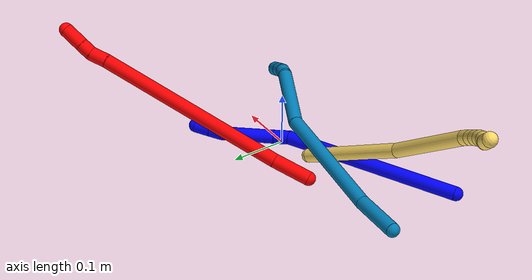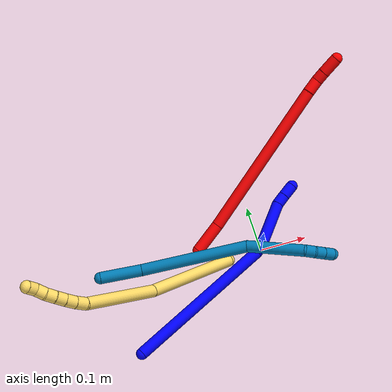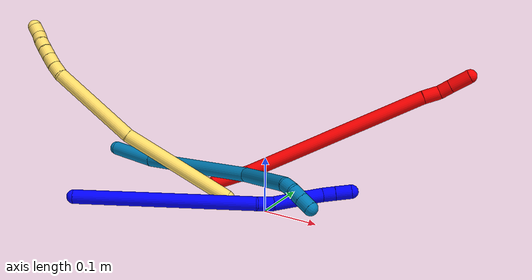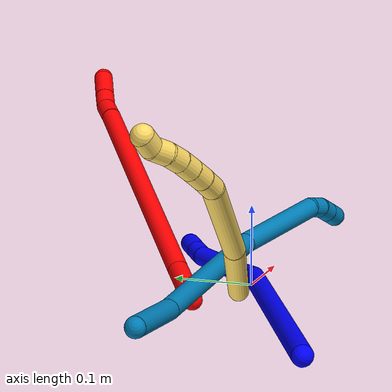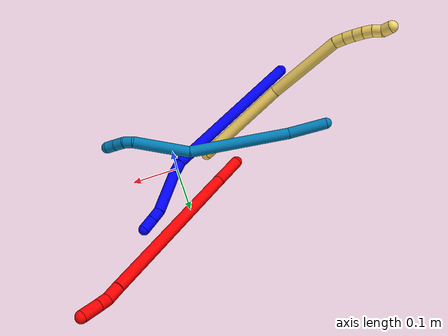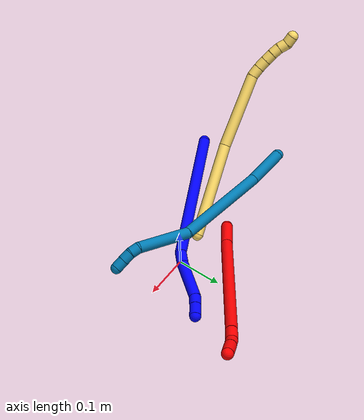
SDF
<sdf version="1.7">
 <world name="default">
  <model name="1">
   <static>0</static>
   <link name="1">
    <collision name="collision-cylinder-e_1_1_4">
     <pose>0.067224 0.115352 0.093211 -0.89116 0.425581 -0.205661</pose>
     <geometry><cylinder><radius>0.0125</radius><length>0.325659</length></cylinder></geometry>
     <surface>
      <friction><ode><mu>1.16</mu><mu2>1.16</mu2><slip1>0</slip1><slip2>0</slip2></ode></friction>
      <contact><ode><kp>1e+06</kp><kd>1</kd><max_vel>0</max_vel><min_depth>0.001</min_depth></ode></contact>
     </surface>
    </collision>
    <visual name="visual-cylinder-e_1_1_4">
     <pose>0.067224 0.115352 0.093211 -0.89116 0.425581 -0.205661</pose>
     <geometry><cylinder><radius>0.0125</radius><length>0.325659</length></cylinder></geometry>
     <material><ambient>0 0 1 1</ambient></material>
    </visual>
    <collision name="collision-cylinder-e_2_4_5">
     <pose>0.141596 0.237093 0.197056 -0.541038 0.522737 -0.148086</pose>
     <geometry><cylinder><radius>0.0125</radius><length>0.028635</length></cylinder></geometry>
     <surface>
      <friction><ode><mu>1.16</mu><mu2>1.16</mu2><slip1>0</slip1><slip2>0</slip2></ode></friction>
      <contact><ode><kp>1e+06</kp><kd>1</kd><max_vel>0</max_vel><min_depth>0.001</min_depth></ode></contact>
     </surface>
    </collision>
    <visual name="visual-cylinder-e_2_4_5">
     <pose>0.141596 0.237093 0.197056 -0.541038 0.522737 -0.148086</pose>
     <geometry><cylinder><radius>0.0125</radius><length>0.028635</length></cylinder></geometry>
     <material><ambient>0 0 1 1</ambient></material>
    </visual>
    <collision name="collision-cylinder-e_3_5_6">
     <pose>0.178696 0.259241 0.239662 -0.457946 0.698814 -0.169427</pose>
     <geometry><cylinder><radius>0.0125</radius><length>0.093116</length></cylinder></geometry>
     <surface>
      <friction><ode><mu>1.16</mu><mu2>1.16</mu2><slip1>0</slip1><slip2>0</slip2></ode></friction>
      <contact><ode><kp>1e+06</kp><kd>1</kd><max_vel>0</max_vel><min_depth>0.001</min_depth></ode></contact>
     </surface>
    </collision>
    <visual name="visual-cylinder-e_3_5_6">
     <pose>0.178696 0.259241 0.239662 -0.457946 0.698814 -0.169427</pose>
     <geometry><cylinder><radius>0.0125</radius><length>0.093116</length></cylinder></geometry>
     <material><ambient>0 0 1 1</ambient></material>
    </visual>
    <collision name="collision-cylinder-e_4_6_7">
     <pose>0.215443 0.281933 0.278492 -0.790871 0.608616 -0.260707</pose>
     <geometry><cylinder><radius>0.0125</radius><length>0.023773</length></cylinder></geometry>
     <surface>
      <friction><ode><mu>1.16</mu><mu2>1.16</mu2><slip1>0</slip1><slip2>0</slip2></ode></friction>
      <contact><ode><kp>1e+06</kp><kd>1</kd><max_vel>0</max_vel><min_depth>0.001</min_depth></ode></contact>
     </surface>
    </collision>
    <visual name="visual-cylinder-e_4_6_7">
     <pose>0.215443 0.281933 0.278492 -0.790871 0.608616 -0.260707</pose>
     <geometry><cylinder><radius>0.0125</radius><length>0.023773</length></cylinder></geometry>
     <material><ambient>0 0 1 1</ambient></material>
    </visual>
    <collision name="collision-cylinder-e_5_7_2">
     <pose>0.230325 0.297514 0.293562 -0.811212 0.59588 -0.262218</pose>
     <geometry><cylinder><radius>0.0125</radius><length>0.028817</length></cylinder></geometry>
     <surface>
      <friction><ode><mu>1.16</mu><mu2>1.16</mu2><slip1>0</slip1><slip2>0</slip2></ode></friction>
      <contact><ode><kp>1e+06</kp><kd>1</kd><max_vel>0</max_vel><min_depth>0.001</min_depth></ode></contact>
     </surface>
    </collision>
    <visual name="visual-cylinder-e_5_7_2">
     <pose>0.230325 0.297514 0.293562 -0.811212 0.59588 -0.262218</pose>
     <geometry><cylinder><radius>0.0125</radius><length>0.028817</length></cylinder></geometry>
     <material><ambient>0 0 1 1</ambient></material>
    </visual>
    <collision name="collision-sphere-2">
     <pose>0.238412 0.306161 0.301774 0 -0 0</pose>
     <geometry><sphere><radius>0.0125</radius></sphere></geometry>
     <surface>
      <friction><ode><mu>1.16</mu><mu2>1.16</mu2><slip1>0</slip1><slip2>0</slip2></ode></friction>
      <contact><ode><kp>1e+06</kp><kd>1</kd><max_vel>0</max_vel><min_depth>0.001</min_depth></ode></contact>
     </surface>
    </collision>
    <visual name="visual-sphere-2">
     <pose>0.238412 0.306161 0.301774 0 -0 0</pose>
     <geometry><sphere><radius>0.0125</radius></sphere></geometry>
     <material><ambient>0 0 1 1</ambient></material>
    </visual>
    <collision name="collision-sphere-7">
     <pose>0.222239 0.288867 0.28535 0 -0 0</pose>
     <geometry><sphere><radius>0.0125</radius></sphere></geometry>
     <surface>
      <friction><ode><mu>1.16</mu><mu2>1.16</mu2><slip1>0</slip1><slip2>0</slip2></ode></friction>
      <contact><ode><kp>1e+06</kp><kd>1</kd><max_vel>0</max_vel><min_depth>0.001</min_depth></ode></contact>
     </surface>
    </collision>
    <visual name="visual-sphere-7">
     <pose>0.222239 0.288867 0.28535 0 -0 0</pose>
     <geometry><sphere><radius>0.0125</radius></sphere></geometry>
     <material><ambient>0 0 1 1</ambient></material>
    </visual>
    <collision name="collision-sphere-6">
     <pose>0.208647 0.275 0.271634 0 -0 0</pose>
     <geometry><sphere><radius>0.0125</radius></sphere></geometry>
     <surface>
      <friction><ode><mu>1.16</mu><mu2>1.16</mu2><slip1>0</slip1><slip2>0</slip2></ode></friction>
      <contact><ode><kp>1e+06</kp><kd>1</kd><max_vel>0</max_vel><min_depth>0.001</min_depth></ode></contact>
     </surface>
    </collision>
    <visual name="visual-sphere-6">
     <pose>0.208647 0.275 0.271634 0 -0 0</pose>
     <geometry><sphere><radius>0.0125</radius></sphere></geometry>
     <material><ambient>0 0 1 1</ambient></material>
    </visual>
    <collision name="collision-sphere-5">
     <pose>0.148744 0.243482 0.20769 0 -0 0</pose>
     <geometry><sphere><radius>0.0125</radius></sphere></geometry>
     <surface>
      <friction><ode><mu>1.16</mu><mu2>1.16</mu2><slip1>0</slip1><slip2>0</slip2></ode></friction>
      <contact><ode><kp>1e+06</kp><kd>1</kd><max_vel>0</max_vel><min_depth>0.001</min_depth></ode></contact>
     </surface>
    </collision>
    <visual name="visual-sphere-5">
     <pose>0.148744 0.243482 0.20769 0 -0 0</pose>
     <geometry><sphere><radius>0.0125</radius></sphere></geometry>
     <material><ambient>0 0 1 1</ambient></material>
    </visual>
    <collision name="collision-sphere-1">
     <geometry><sphere><radius>0.0125</radius></sphere></geometry>
     <surface>
      <friction><ode><mu>1.16</mu><mu2>1.16</mu2><slip1>0</slip1><slip2>0</slip2></ode></friction>
      <contact><ode><kp>1e+06</kp><kd>1</kd><max_vel>0</max_vel><min_depth>0.001</min_depth></ode></contact>
     </surface>
    </collision>
    <visual name="visual-sphere-1">
     <geometry><sphere><radius>0.0125</radius></sphere></geometry>
     <material><ambient>0 0 1 1</ambient></material>
    </visual>
    <collision name="collision-sphere-4">
     <pose>0.134449 0.230704 0.186422 0 -0 0</pose>
     <geometry><sphere><radius>0.0125</radius></sphere></geometry>
     <surface>
      <friction><ode><mu>1.16</mu><mu2>1.16</mu2><slip1>0</slip1><slip2>0</slip2></ode></friction>
      <contact><ode><kp>1e+06</kp><kd>1</kd><max_vel>0</max_vel><min_depth>0.001</min_depth></ode></contact>
     </surface>
    </collision>
    <visual name="visual-sphere-4">
     <pose>0.134449 0.230704 0.186422 0 -0 0</pose>
     <geometry><sphere><radius>0.0125</radius></sphere></geometry>
     <material><ambient>0 0 1 1</ambient></material>
    </visual>
    <inertial>
     <pose>0.10869 0.16754 0.146789 0 -0 0</pose>
     <mass>0.5</mass>
     <inertia>
      <ixx>0.002108</ixx>
      <ixy>0</ixy>
      <ixz>0</ixz>
      <iyy>0.001517</iyy>
      <iyz>0</iyz>
      <izz>-0.003296</izz>
     </inertia>
    </inertial>
   </link>
   <pose>-0.30414 -0.152167 0.011496 2.91241 -0.779257 1.42184</pose>
  </model>
  <model name="2">
   <static>0</static>
   <link name="2">
    <collision name="collision-cylinder-e_1_1_4">
     <pose>-0.002289 0.008768 0.032505 -0.263465 -0.067887 0.008998</pose>
     <geometry><cylinder><radius>0.0125</radius><length>0.067489</length></cylinder></geometry>
     <surface>
      <friction><ode><mu>1.16</mu><mu2>1.16</mu2><slip1>0</slip1><slip2>0</slip2></ode></friction>
      <contact><ode><kp>1e+06</kp><kd>1</kd><max_vel>0</max_vel><min_depth>0.001</min_depth></ode></contact>
     </surface>
    </collision>
    <visual name="visual-cylinder-e_1_1_4">
     <pose>-0.002289 0.008768 0.032505 -0.263465 -0.067887 0.008998</pose>
     <geometry><cylinder><radius>0.0125</radius><length>0.067489</length></cylinder></geometry>
     <material><ambient>1 0 0 1</ambient></material>
    </visual>
    <collision name="collision-cylinder-e_2_4_5">
     <pose>-0.001518 0.070416 0.22719 -0.315189 0.017935 -0.00285</pose>
     <geometry><cylinder><radius>0.0125</radius><length>0.341222</length></cylinder></geometry>
     <surface>
      <friction><ode><mu>1.16</mu><mu2>1.16</mu2><slip1>0</slip1><slip2>0</slip2></ode></friction>
      <contact><ode><kp>1e+06</kp><kd>1</kd><max_vel>0</max_vel><min_depth>0.001</min_depth></ode></contact>
     </surface>
    </collision>
    <visual name="visual-cylinder-e_2_4_5">
     <pose>-0.001518 0.070416 0.22719 -0.315189 0.017935 -0.00285</pose>
     <geometry><cylinder><radius>0.0125</radius><length>0.341222</length></cylinder></geometry>
     <material><ambient>1 0 0 1</ambient></material>
    </visual>
    <collision name="collision-cylinder-e_3_5_6">
     <pose>0.000603 0.126858 0.404117 -0.237015 -0.061778 0.007358</pose>
     <geometry><cylinder><radius>0.0125</radius><length>0.0304</length></cylinder></geometry>
     <surface>
      <friction><ode><mu>1.16</mu><mu2>1.16</mu2><slip1>0</slip1><slip2>0</slip2></ode></friction>
      <contact><ode><kp>1e+06</kp><kd>1</kd><max_vel>0</max_vel><min_depth>0.001</min_depth></ode></contact>
     </surface>
    </collision>
    <visual name="visual-cylinder-e_3_5_6">
     <pose>0.000603 0.126858 0.404117 -0.237015 -0.061778 0.007358</pose>
     <geometry><cylinder><radius>0.0125</radius><length>0.0304</length></cylinder></geometry>
     <material><ambient>1 0 0 1</ambient></material>
    </visual>
    <collision name="collision-cylinder-e_4_6_7">
     <pose>-0.000216 0.136125 0.428541 -0.532652 0.010639 -0.002902</pose>
     <geometry><cylinder><radius>0.0125</radius><length>0.022468</length></cylinder></geometry>
     <surface>
      <friction><ode><mu>1.16</mu><mu2>1.16</mu2><slip1>0</slip1><slip2>0</slip2></ode></friction>
      <contact><ode><kp>1e+06</kp><kd>1</kd><max_vel>0</max_vel><min_depth>0.001</min_depth></ode></contact>
     </surface>
    </collision>
    <visual name="visual-cylinder-e_4_6_7">
     <pose>-0.000216 0.136125 0.428541 -0.532652 0.010639 -0.002902</pose>
     <geometry><cylinder><radius>0.0125</radius><length>0.022468</length></cylinder></geometry>
     <material><ambient>1 0 0 1</ambient></material>
    </visual>
    <collision name="collision-cylinder-e_5_7_2">
     <pose>-0.000463 0.151674 0.45471 -0.538164 -0.019078 0.005261</pose>
     <geometry><cylinder><radius>0.0125</radius><length>0.038422</length></cylinder></geometry>
     <surface>
      <friction><ode><mu>1.16</mu><mu2>1.16</mu2><slip1>0</slip1><slip2>0</slip2></ode></friction>
      <contact><ode><kp>1e+06</kp><kd>1</kd><max_vel>0</max_vel><min_depth>0.001</min_depth></ode></contact>
     </surface>
    </collision>
    <visual name="visual-cylinder-e_5_7_2">
     <pose>-0.000463 0.151674 0.45471 -0.538164 -0.019078 0.005261</pose>
     <geometry><cylinder><radius>0.0125</radius><length>0.038422</length></cylinder></geometry>
     <material><ambient>1 0 0 1</ambient></material>
    </visual>
    <collision name="collision-sphere-2">
     <pose>-0.00083 0.161519 0.471203 0 -0 0</pose>
     <geometry><sphere><radius>0.0125</radius></sphere></geometry>
     <surface>
      <friction><ode><mu>1.16</mu><mu2>1.16</mu2><slip1>0</slip1><slip2>0</slip2></ode></friction>
      <contact><ode><kp>1e+06</kp><kd>1</kd><max_vel>0</max_vel><min_depth>0.001</min_depth></ode></contact>
     </surface>
    </collision>
    <visual name="visual-sphere-2">
     <pose>-0.00083 0.161519 0.471203 0 -0 0</pose>
     <geometry><sphere><radius>0.0125</radius></sphere></geometry>
     <material><ambient>1 0 0 1</ambient></material>
    </visual>
    <collision name="collision-sphere-7">
     <pose>-9.7e-05 0.141829 0.438218 0 -0 0</pose>
     <geometry><sphere><radius>0.0125</radius></sphere></geometry>
     <surface>
      <friction><ode><mu>1.16</mu><mu2>1.16</mu2><slip1>0</slip1><slip2>0</slip2></ode></friction>
      <contact><ode><kp>1e+06</kp><kd>1</kd><max_vel>0</max_vel><min_depth>0.001</min_depth></ode></contact>
     </surface>
    </collision>
    <visual name="visual-sphere-7">
     <pose>-9.7e-05 0.141829 0.438218 0 -0 0</pose>
     <geometry><sphere><radius>0.0125</radius></sphere></geometry>
     <material><ambient>1 0 0 1</ambient></material>
    </visual>
    <collision name="collision-sphere-6">
     <pose>-0.000336 0.13042 0.418864 0 -0 0</pose>
     <geometry><sphere><radius>0.0125</radius></sphere></geometry>
     <surface>
      <friction><ode><mu>1.16</mu><mu2>1.16</mu2><slip1>0</slip1><slip2>0</slip2></ode></friction>
      <contact><ode><kp>1e+06</kp><kd>1</kd><max_vel>0</max_vel><min_depth>0.001</min_depth></ode></contact>
     </surface>
    </collision>
    <visual name="visual-sphere-6">
     <pose>-0.000336 0.13042 0.418864 0 -0 0</pose>
     <geometry><sphere><radius>0.0125</radius></sphere></geometry>
     <material><ambient>1 0 0 1</ambient></material>
    </visual>
    <collision name="collision-sphere-5">
     <pose>0.001541 0.123296 0.38937 0 -0 0</pose>
     <geometry><sphere><radius>0.0125</radius></sphere></geometry>
     <surface>
      <friction><ode><mu>1.16</mu><mu2>1.16</mu2><slip1>0</slip1><slip2>0</slip2></ode></friction>
      <contact><ode><kp>1e+06</kp><kd>1</kd><max_vel>0</max_vel><min_depth>0.001</min_depth></ode></contact>
     </surface>
    </collision>
    <visual name="visual-sphere-5">
     <pose>0.001541 0.123296 0.38937 0 -0 0</pose>
     <geometry><sphere><radius>0.0125</radius></sphere></geometry>
     <material><ambient>1 0 0 1</ambient></material>
    </visual>
    <collision name="collision-sphere-1">
     <geometry><sphere><radius>0.0125</radius></sphere></geometry>
     <surface>
      <friction><ode><mu>1.16</mu><mu2>1.16</mu2><slip1>0</slip1><slip2>0</slip2></ode></friction>
      <contact><ode><kp>1e+06</kp><kd>1</kd><max_vel>0</max_vel><min_depth>0.001</min_depth></ode></contact>
     </surface>
    </collision>
    <visual name="visual-sphere-1">
     <geometry><sphere><radius>0.0125</radius></sphere></geometry>
     <material><ambient>1 0 0 1</ambient></material>
    </visual>
    <collision name="collision-sphere-4">
     <pose>-0.004578 0.017535 0.06501 0 -0 0</pose>
     <geometry><sphere><radius>0.0125</radius></sphere></geometry>
     <surface>
      <friction><ode><mu>1.16</mu><mu2>1.16</mu2><slip1>0</slip1><slip2>0</slip2></ode></friction>
      <contact><ode><kp>1e+06</kp><kd>1</kd><max_vel>0</max_vel><min_depth>0.001</min_depth></ode></contact>
     </surface>
    </collision>
    <visual name="visual-sphere-4">
     <pose>-0.004578 0.017535 0.06501 0 -0 0</pose>
     <geometry><sphere><radius>0.0125</radius></sphere></geometry>
     <material><ambient>1 0 0 1</ambient></material>
    </visual>
    <inertial>
     <pose>-0.001354 0.074723 0.2382 0 -0 0</pose>
     <mass>0.5</mass>
     <inertia>
      <ixx>0.003354</ixx>
      <ixy>0</ixy>
      <ixz>0</ixz>
      <iyy>0.003201</iyy>
      <iyz>0</iyz>
      <izz>-0.001063</izz>
     </inertia>
    </inertial>
   </link>
   <pose>-0.130167 0.032472 0.011489 1.37905 -0.639296 2.51008</pose>
  </model>
  <model name="5">
   <static>0</static>
   <link name="5">
    <collision name="collision-cylinder-e_1_1_4">
     <pose>-0.044041 -0.004742 0.094668 0.050046 -0.43496 -0.011061</pose>
     <geometry><cylinder><radius>0.0125</radius><length>0.209037</length></cylinder></geometry>
     <surface>
      <friction><ode><mu>1.16</mu><mu2>1.16</mu2><slip1>0</slip1><slip2>0</slip2></ode></friction>
      <contact><ode><kp>1e+06</kp><kd>1</kd><max_vel>0</max_vel><min_depth>0.001</min_depth></ode></contact>
     </surface>
    </collision>
    <visual name="visual-cylinder-e_1_1_4">
     <pose>-0.044041 -0.004742 0.094668 0.050046 -0.43496 -0.011061</pose>
     <geometry><cylinder><radius>0.0125</radius><length>0.209037</length></cylinder></geometry>
     <material><ambient>1 0.858824 0.4 1</ambient></material>
    </visual>
    <collision name="collision-cylinder-e_2_4_5">
     <pose>-0.119371 0.000929 0.265258 -0.136288 -0.387627 0.02679</pose>
     <geometry><cylinder><radius>0.0125</radius><length>0.165549</length></cylinder></geometry>
     <surface>
      <friction><ode><mu>1.16</mu><mu2>1.16</mu2><slip1>0</slip1><slip2>0</slip2></ode></friction>
      <contact><ode><kp>1e+06</kp><kd>1</kd><max_vel>0</max_vel><min_depth>0.001</min_depth></ode></contact>
     </surface>
    </collision>
    <visual name="visual-cylinder-e_2_4_5">
     <pose>-0.119371 0.000929 0.265258 -0.136288 -0.387627 0.02679</pose>
     <geometry><cylinder><radius>0.0125</radius><length>0.165549</length></cylinder></geometry>
     <material><ambient>1 0.858824 0.4 1</ambient></material>
    </visual>
    <collision name="collision-cylinder-e_3_5_6">
     <pose>-0.156395 0.015611 0.350142 -0.444719 -0.523969 0.121107</pose>
     <geometry><cylinder><radius>0.0125</radius><length>0.022928</length></cylinder></geometry>
     <surface>
      <friction><ode><mu>1.16</mu><mu2>1.16</mu2><slip1>0</slip1><slip2>0</slip2></ode></friction>
      <contact><ode><kp>1e+06</kp><kd>1</kd><max_vel>0</max_vel><min_depth>0.001</min_depth></ode></contact>
     </surface>
    </collision>
    <visual name="visual-cylinder-e_3_5_6">
     <pose>-0.156395 0.015611 0.350142 -0.444719 -0.523969 0.121107</pose>
     <geometry><cylinder><radius>0.0125</radius><length>0.022928</length></cylinder></geometry>
     <material><ambient>1 0.858824 0.4 1</ambient></material>
    </visual>
    <collision name="collision-cylinder-e_4_6_7">
     <pose>-0.167659 0.024973 0.367197 -0.561516 -0.52417 0.154409</pose>
     <geometry><cylinder><radius>0.0125</radius><length>0.022091</length></cylinder></geometry>
     <surface>
      <friction><ode><mu>1.16</mu><mu2>1.16</mu2><slip1>0</slip1><slip2>0</slip2></ode></friction>
      <contact><ode><kp>1e+06</kp><kd>1</kd><max_vel>0</max_vel><min_depth>0.001</min_depth></ode></contact>
     </surface>
    </collision>
    <visual name="visual-cylinder-e_4_6_7">
     <pose>-0.167659 0.024973 0.367197 -0.561516 -0.52417 0.154409</pose>
     <geometry><cylinder><radius>0.0125</radius><length>0.022091</length></cylinder></geometry>
     <material><ambient>1 0.858824 0.4 1</ambient></material>
    </visual>
    <collision name="collision-cylinder-e_5_7_8">
     <pose>-0.17832 0.034991 0.382446 -0.603038 -0.533713 0.169633</pose>
     <geometry><cylinder><radius>0.0125</radius><length>0.02018</length></cylinder></geometry>
     <surface>
      <friction><ode><mu>1.16</mu><mu2>1.16</mu2><slip1>0</slip1><slip2>0</slip2></ode></friction>
      <contact><ode><kp>1e+06</kp><kd>1</kd><max_vel>0</max_vel><min_depth>0.001</min_depth></ode></contact>
     </surface>
    </collision>
    <visual name="visual-cylinder-e_5_7_8">
     <pose>-0.17832 0.034991 0.382446 -0.603038 -0.533713 0.169633</pose>
     <geometry><cylinder><radius>0.0125</radius><length>0.02018</length></cylinder></geometry>
     <material><ambient>1 0.858824 0.4 1</ambient></material>
    </visual>
    <collision name="collision-cylinder-e_6_8_9">
     <pose>-0.18925 0.044935 0.396123 -0.655701 -0.613659 0.214699</pose>
     <geometry><cylinder><radius>0.0125</radius><length>0.020132</length></cylinder></geometry>
     <surface>
      <friction><ode><mu>1.16</mu><mu2>1.16</mu2><slip1>0</slip1><slip2>0</slip2></ode></friction>
      <contact><ode><kp>1e+06</kp><kd>1</kd><max_vel>0</max_vel><min_depth>0.001</min_depth></ode></contact>
     </surface>
    </collision>
    <visual name="visual-cylinder-e_6_8_9">
     <pose>-0.18925 0.044935 0.396123 -0.655701 -0.613659 0.214699</pose>
     <geometry><cylinder><radius>0.0125</radius><length>0.020132</length></cylinder></geometry>
     <material><ambient>1 0.858824 0.4 1</ambient></material>
    </visual>
    <collision name="collision-cylinder-e_7_9_10">
     <pose>-0.201471 0.055953 0.407491 -0.891497 -0.694598 0.342527</pose>
     <geometry><cylinder><radius>0.0125</radius><length>0.020075</length></cylinder></geometry>
     <surface>
      <friction><ode><mu>1.16</mu><mu2>1.16</mu2><slip1>0</slip1><slip2>0</slip2></ode></friction>
      <contact><ode><kp>1e+06</kp><kd>1</kd><max_vel>0</max_vel><min_depth>0.001</min_depth></ode></contact>
     </surface>
    </collision>
    <visual name="visual-cylinder-e_7_9_10">
     <pose>-0.201471 0.055953 0.407491 -0.891497 -0.694598 0.342527</pose>
     <geometry><cylinder><radius>0.0125</radius><length>0.020075</length></cylinder></geometry>
     <material><ambient>1 0.858824 0.4 1</ambient></material>
    </visual>
    <collision name="collision-cylinder-e_8_10_2">
     <pose>-0.211326 0.06677 0.420404 -0.538201 -0.34998 0.097441</pose>
     <geometry><cylinder><radius>0.0125</radius><length>0.020007</length></cylinder></geometry>
     <surface>
      <friction><ode><mu>1.16</mu><mu2>1.16</mu2><slip1>0</slip1><slip2>0</slip2></ode></friction>
      <contact><ode><kp>1e+06</kp><kd>1</kd><max_vel>0</max_vel><min_depth>0.001</min_depth></ode></contact>
     </surface>
    </collision>
    <visual name="visual-cylinder-e_8_10_2">
     <pose>-0.211326 0.06677 0.420404 -0.538201 -0.34998 0.097441</pose>
     <geometry><cylinder><radius>0.0125</radius><length>0.020007</length></cylinder></geometry>
     <material><ambient>1 0.858824 0.4 1</ambient></material>
    </visual>
    <collision name="collision-sphere-2">
     <pose>-0.214756 0.071587 0.428473 0 -0 0</pose>
     <geometry><sphere><radius>0.0125</radius></sphere></geometry>
     <surface>
      <friction><ode><mu>1.16</mu><mu2>1.16</mu2><slip1>0</slip1><slip2>0</slip2></ode></friction>
      <contact><ode><kp>1e+06</kp><kd>1</kd><max_vel>0</max_vel><min_depth>0.001</min_depth></ode></contact>
     </surface>
    </collision>
    <visual name="visual-sphere-2">
     <pose>-0.214756 0.071587 0.428473 0 -0 0</pose>
     <geometry><sphere><radius>0.0125</radius></sphere></geometry>
     <material><ambient>1 0.858824 0.4 1</ambient></material>
    </visual>
    <collision name="collision-sphere-10">
     <pose>-0.207896 0.061953 0.412336 0 -0 0</pose>
     <geometry><sphere><radius>0.0125</radius></sphere></geometry>
     <surface>
      <friction><ode><mu>1.16</mu><mu2>1.16</mu2><slip1>0</slip1><slip2>0</slip2></ode></friction>
      <contact><ode><kp>1e+06</kp><kd>1</kd><max_vel>0</max_vel><min_depth>0.001</min_depth></ode></contact>
     </surface>
    </collision>
    <visual name="visual-sphere-10">
     <pose>-0.207896 0.061953 0.412336 0 -0 0</pose>
     <geometry><sphere><radius>0.0125</radius></sphere></geometry>
     <material><ambient>1 0.858824 0.4 1</ambient></material>
    </visual>
    <collision name="collision-sphere-9">
     <pose>-0.195047 0.049953 0.402646 0 -0 0</pose>
     <geometry><sphere><radius>0.0125</radius></sphere></geometry>
     <surface>
      <friction><ode><mu>1.16</mu><mu2>1.16</mu2><slip1>0</slip1><slip2>0</slip2></ode></friction>
      <contact><ode><kp>1e+06</kp><kd>1</kd><max_vel>0</max_vel><min_depth>0.001</min_depth></ode></contact>
     </surface>
    </collision>
    <visual name="visual-sphere-9">
     <pose>-0.195047 0.049953 0.402646 0 -0 0</pose>
     <geometry><sphere><radius>0.0125</radius></sphere></geometry>
     <material><ambient>1 0.858824 0.4 1</ambient></material>
    </visual>
    <collision name="collision-sphere-4">
     <pose>-0.088083 -0.009483 0.189336 0 -0 0</pose>
     <geometry><sphere><radius>0.0125</radius></sphere></geometry>
     <surface>
      <friction><ode><mu>1.16</mu><mu2>1.16</mu2><slip1>0</slip1><slip2>0</slip2></ode></friction>
      <contact><ode><kp>1e+06</kp><kd>1</kd><max_vel>0</max_vel><min_depth>0.001</min_depth></ode></contact>
     </surface>
    </collision>
    <visual name="visual-sphere-4">
     <pose>-0.088083 -0.009483 0.189336 0 -0 0</pose>
     <geometry><sphere><radius>0.0125</radius></sphere></geometry>
     <material><ambient>1 0.858824 0.4 1</ambient></material>
    </visual>
    <collision name="collision-sphere-1">
     <geometry><sphere><radius>0.0125</radius></sphere></geometry>
     <surface>
      <friction><ode><mu>1.16</mu><mu2>1.16</mu2><slip1>0</slip1><slip2>0</slip2></ode></friction>
      <contact><ode><kp>1e+06</kp><kd>1</kd><max_vel>0</max_vel><min_depth>0.001</min_depth></ode></contact>
     </surface>
    </collision>
    <visual name="visual-sphere-1">
     <geometry><sphere><radius>0.0125</radius></sphere></geometry>
     <material><ambient>1 0.858824 0.4 1</ambient></material>
    </visual>
    <collision name="collision-sphere-8">
     <pose>-0.183453 0.039918 0.3896 0 -0 0</pose>
     <geometry><sphere><radius>0.0125</radius></sphere></geometry>
     <surface>
      <friction><ode><mu>1.16</mu><mu2>1.16</mu2><slip1>0</slip1><slip2>0</slip2></ode></friction>
      <contact><ode><kp>1e+06</kp><kd>1</kd><max_vel>0</max_vel><min_depth>0.001</min_depth></ode></contact>
     </surface>
    </collision>
    <visual name="visual-sphere-8">
     <pose>-0.183453 0.039918 0.3896 0 -0 0</pose>
     <geometry><sphere><radius>0.0125</radius></sphere></geometry>
     <material><ambient>1 0.858824 0.4 1</ambient></material>
    </visual>
    <collision name="collision-sphere-5">
     <pose>-0.150659 0.01134 0.341181 0 -0 0</pose>
     <geometry><sphere><radius>0.0125</radius></sphere></geometry>
     <surface>
      <friction><ode><mu>1.16</mu><mu2>1.16</mu2><slip1>0</slip1><slip2>0</slip2></ode></friction>
      <contact><ode><kp>1e+06</kp><kd>1</kd><max_vel>0</max_vel><min_depth>0.001</min_depth></ode></contact>
     </surface>
    </collision>
    <visual name="visual-sphere-5">
     <pose>-0.150659 0.01134 0.341181 0 -0 0</pose>
     <geometry><sphere><radius>0.0125</radius></sphere></geometry>
     <material><ambient>1 0.858824 0.4 1</ambient></material>
    </visual>
    <collision name="collision-sphere-6">
     <pose>-0.16213 0.019881 0.359102 0 -0 0</pose>
     <geometry><sphere><radius>0.0125</radius></sphere></geometry>
     <surface>
      <friction><ode><mu>1.16</mu><mu2>1.16</mu2><slip1>0</slip1><slip2>0</slip2></ode></friction>
      <contact><ode><kp>1e+06</kp><kd>1</kd><max_vel>0</max_vel><min_depth>0.001</min_depth></ode></contact>
     </surface>
    </collision>
    <visual name="visual-sphere-6">
     <pose>-0.16213 0.019881 0.359102 0 -0 0</pose>
     <geometry><sphere><radius>0.0125</radius></sphere></geometry>
     <material><ambient>1 0.858824 0.4 1</ambient></material>
    </visual>
    <collision name="collision-sphere-7">
     <pose>-0.173187 0.030065 0.375291 0 -0 0</pose>
     <geometry><sphere><radius>0.0125</radius></sphere></geometry>
     <surface>
      <friction><ode><mu>1.16</mu><mu2>1.16</mu2><slip1>0</slip1><slip2>0</slip2></ode></friction>
      <contact><ode><kp>1e+06</kp><kd>1</kd><max_vel>0</max_vel><min_depth>0.001</min_depth></ode></contact>
     </surface>
    </collision>
    <visual name="visual-sphere-7">
     <pose>-0.173187 0.030065 0.375291 0 -0 0</pose>
     <geometry><sphere><radius>0.0125</radius></sphere></geometry>
     <material><ambient>1 0.858824 0.4 1</ambient></material>
    </visual>
    <inertial>
     <pose>-0.103878 0.008284 0.224253 0 -0 0</pose>
     <mass>0.5</mass>
     <inertia>
      <ixx>0.001048</ixx>
      <ixy>0</ixy>
      <ixz>0</ixz>
      <iyy>0.001167</iyy>
      <iyz>0</iyz>
      <izz>0.00049</izz>
     </inertia>
    </inertial>
   </link>
   <pose>-0.074094 -0.007165 0.011502 0.612664 -0.446637 -0.398043</pose>
  </model>
  <model name="9">
   <static>0</static>
   <link name="9">
    <collision name="collision-cylinder-e_1_1_4">
     <pose>0.024492 -0.01386 0.034047 0.386587 0.587715 0.118329</pose>
     <geometry><cylinder><radius>0.0125</radius><length>0.088344</length></cylinder></geometry>
     <surface>
      <friction><ode><mu>1.16</mu><mu2>1.16</mu2><slip1>0</slip1><slip2>0</slip2></ode></friction>
      <contact><ode><kp>1e+06</kp><kd>1</kd><max_vel>0</max_vel><min_depth>0.001</min_depth></ode></contact>
     </surface>
    </collision>
    <visual name="visual-cylinder-e_1_1_4">
     <pose>0.024492 -0.01386 0.034047 0.386587 0.587715 0.118329</pose>
     <geometry><cylinder><radius>0.0125</radius><length>0.088344</length></cylinder></geometry>
     <material><ambient>0 0.490196 0.709804 1</ambient></material>
    </visual>
    <collision name="collision-cylinder-e_2_4_5">
     <pose>0.117239 -0.075738 0.144249 0.56258 0.648695 0.193695</pose>
     <geometry><cylinder><radius>0.0125</radius><length>0.225956</length></cylinder></geometry>
     <surface>
      <friction><ode><mu>1.16</mu><mu2>1.16</mu2><slip1>0</slip1><slip2>0</slip2></ode></friction>
      <contact><ode><kp>1e+06</kp><kd>1</kd><max_vel>0</max_vel><min_depth>0.001</min_depth></ode></contact>
     </surface>
    </collision>
    <visual name="visual-cylinder-e_2_4_5">
     <pose>0.117239 -0.075738 0.144249 0.56258 0.648695 0.193695</pose>
     <geometry><cylinder><radius>0.0125</radius><length>0.225956</length></cylinder></geometry>
     <material><ambient>0 0.490196 0.709804 1</ambient></material>
    </visual>
    <collision name="collision-cylinder-e_3_5_6">
     <pose>0.237048 -0.141934 0.247266 0.594877 1.00922 0.335417</pose>
     <geometry><cylinder><radius>0.0125</radius><length>0.121817</length></cylinder></geometry>
     <surface>
      <friction><ode><mu>1.16</mu><mu2>1.16</mu2><slip1>0</slip1><slip2>0</slip2></ode></friction>
      <contact><ode><kp>1e+06</kp><kd>1</kd><max_vel>0</max_vel><min_depth>0.001</min_depth></ode></contact>
     </surface>
    </collision>
    <visual name="visual-cylinder-e_3_5_6">
     <pose>0.237048 -0.141934 0.247266 0.594877 1.00922 0.335417</pose>
     <geometry><cylinder><radius>0.0125</radius><length>0.121817</length></cylinder></geometry>
     <material><ambient>0 0.490196 0.709804 1</ambient></material>
    </visual>
    <collision name="collision-cylinder-e_4_6_7">
     <pose>0.296008 -0.16056 0.281331 0.062342 0.798442 0.026308</pose>
     <geometry><cylinder><radius>0.0125</radius><length>0.020679</length></cylinder></geometry>
     <surface>
      <friction><ode><mu>1.16</mu><mu2>1.16</mu2><slip1>0</slip1><slip2>0</slip2></ode></friction>
      <contact><ode><kp>1e+06</kp><kd>1</kd><max_vel>0</max_vel><min_depth>0.001</min_depth></ode></contact>
     </surface>
    </collision>
    <visual name="visual-cylinder-e_4_6_7">
     <pose>0.296008 -0.16056 0.281331 0.062342 0.798442 0.026308</pose>
     <geometry><cylinder><radius>0.0125</radius><length>0.020679</length></cylinder></geometry>
     <material><ambient>0 0.490196 0.709804 1</ambient></material>
    </visual>
    <collision name="collision-cylinder-e_5_7_8">
     <pose>0.308939 -0.15976 0.297647 -0.136222 0.540861 -0.037818</pose>
     <geometry><cylinder><radius>0.0125</radius><length>0.021465</length></cylinder></geometry>
     <surface>
      <friction><ode><mu>1.16</mu><mu2>1.16</mu2><slip1>0</slip1><slip2>0</slip2></ode></friction>
      <contact><ode><kp>1e+06</kp><kd>1</kd><max_vel>0</max_vel><min_depth>0.001</min_depth></ode></contact>
     </surface>
    </collision>
    <visual name="visual-cylinder-e_5_7_8">
     <pose>0.308939 -0.15976 0.297647 -0.136222 0.540861 -0.037818</pose>
     <geometry><cylinder><radius>0.0125</radius><length>0.021465</length></cylinder></geometry>
     <material><ambient>0 0.490196 0.709804 1</ambient></material>
    </visual>
    <collision name="collision-cylinder-e_6_8_2">
     <pose>0.319979 -0.157282 0.316049 -0.131552 0.532044 -0.035893</pose>
     <geometry><cylinder><radius>0.0125</radius><length>0.021739</length></cylinder></geometry>
     <surface>
      <friction><ode><mu>1.16</mu><mu2>1.16</mu2><slip1>0</slip1><slip2>0</slip2></ode></friction>
      <contact><ode><kp>1e+06</kp><kd>1</kd><max_vel>0</max_vel><min_depth>0.001</min_depth></ode></contact>
     </surface>
    </collision>
    <visual name="visual-cylinder-e_6_8_2">
     <pose>0.319979 -0.157282 0.316049 -0.131552 0.532044 -0.035893</pose>
     <geometry><cylinder><radius>0.0125</radius><length>0.021739</length></cylinder></geometry>
     <material><ambient>0 0.490196 0.709804 1</ambient></material>
    </visual>
    <collision name="collision-sphere-2">
     <pose>0.325493 -0.156054 0.325335 0 -0 0</pose>
     <geometry><sphere><radius>0.0125</radius></sphere></geometry>
     <surface>
      <friction><ode><mu>1.16</mu><mu2>1.16</mu2><slip1>0</slip1><slip2>0</slip2></ode></friction>
      <contact><ode><kp>1e+06</kp><kd>1</kd><max_vel>0</max_vel><min_depth>0.001</min_depth></ode></contact>
     </surface>
    </collision>
    <visual name="visual-sphere-2">
     <pose>0.325493 -0.156054 0.325335 0 -0 0</pose>
     <geometry><sphere><radius>0.0125</radius></sphere></geometry>
     <material><ambient>0 0.490196 0.709804 1</ambient></material>
    </visual>
    <collision name="collision-sphere-4">
     <pose>0.048983 -0.027719 0.068095 0 -0 0</pose>
     <geometry><sphere><radius>0.0125</radius></sphere></geometry>
     <surface>
      <friction><ode><mu>1.16</mu><mu2>1.16</mu2><slip1>0</slip1><slip2>0</slip2></ode></friction>
      <contact><ode><kp>1e+06</kp><kd>1</kd><max_vel>0</max_vel><min_depth>0.001</min_depth></ode></contact>
     </surface>
    </collision>
    <visual name="visual-sphere-4">
     <pose>0.048983 -0.027719 0.068095 0 -0 0</pose>
     <geometry><sphere><radius>0.0125</radius></sphere></geometry>
     <material><ambient>0 0.490196 0.709804 1</ambient></material>
    </visual>
    <collision name="collision-sphere-1">
     <geometry><sphere><radius>0.0125</radius></sphere></geometry>
     <surface>
      <friction><ode><mu>1.16</mu><mu2>1.16</mu2><slip1>0</slip1><slip2>0</slip2></ode></friction>
      <contact><ode><kp>1e+06</kp><kd>1</kd><max_vel>0</max_vel><min_depth>0.001</min_depth></ode></contact>
     </surface>
    </collision>
    <visual name="visual-sphere-1">
     <geometry><sphere><radius>0.0125</radius></sphere></geometry>
     <material><ambient>0 0.490196 0.709804 1</ambient></material>
    </visual>
    <collision name="collision-sphere-8">
     <pose>0.314465 -0.158511 0.306762 0 -0 0</pose>
     <geometry><sphere><radius>0.0125</radius></sphere></geometry>
     <surface>
      <friction><ode><mu>1.16</mu><mu2>1.16</mu2><slip1>0</slip1><slip2>0</slip2></ode></friction>
      <contact><ode><kp>1e+06</kp><kd>1</kd><max_vel>0</max_vel><min_depth>0.001</min_depth></ode></contact>
     </surface>
    </collision>
    <visual name="visual-sphere-8">
     <pose>0.314465 -0.158511 0.306762 0 -0 0</pose>
     <geometry><sphere><radius>0.0125</radius></sphere></geometry>
     <material><ambient>0 0.490196 0.709804 1</ambient></material>
    </visual>
    <collision name="collision-sphere-5">
     <pose>0.185494 -0.123757 0.220403 0 -0 0</pose>
     <geometry><sphere><radius>0.0125</radius></sphere></geometry>
     <surface>
      <friction><ode><mu>1.16</mu><mu2>1.16</mu2><slip1>0</slip1><slip2>0</slip2></ode></friction>
      <contact><ode><kp>1e+06</kp><kd>1</kd><max_vel>0</max_vel><min_depth>0.001</min_depth></ode></contact>
     </surface>
    </collision>
    <visual name="visual-sphere-5">
     <pose>0.185494 -0.123757 0.220403 0 -0 0</pose>
     <geometry><sphere><radius>0.0125</radius></sphere></geometry>
     <material><ambient>0 0.490196 0.709804 1</ambient></material>
    </visual>
    <collision name="collision-sphere-6">
     <pose>0.288602 -0.160111 0.27413 0 -0 0</pose>
     <geometry><sphere><radius>0.0125</radius></sphere></geometry>
     <surface>
      <friction><ode><mu>1.16</mu><mu2>1.16</mu2><slip1>0</slip1><slip2>0</slip2></ode></friction>
      <contact><ode><kp>1e+06</kp><kd>1</kd><max_vel>0</max_vel><min_depth>0.001</min_depth></ode></contact>
     </surface>
    </collision>
    <visual name="visual-sphere-6">
     <pose>0.288602 -0.160111 0.27413 0 -0 0</pose>
     <geometry><sphere><radius>0.0125</radius></sphere></geometry>
     <material><ambient>0 0.490196 0.709804 1</ambient></material>
    </visual>
    <collision name="collision-sphere-7">
     <pose>0.303414 -0.16101 0.288532 0 -0 0</pose>
     <geometry><sphere><radius>0.0125</radius></sphere></geometry>
     <surface>
      <friction><ode><mu>1.16</mu><mu2>1.16</mu2><slip1>0</slip1><slip2>0</slip2></ode></friction>
      <contact><ode><kp>1e+06</kp><kd>1</kd><max_vel>0</max_vel><min_depth>0.001</min_depth></ode></contact>
     </surface>
    </collision>
    <visual name="visual-sphere-7">
     <pose>0.303414 -0.16101 0.288532 0 -0 0</pose>
     <geometry><sphere><radius>0.0125</radius></sphere></geometry>
     <material><ambient>0 0.490196 0.709804 1</ambient></material>
    </visual>
    <inertial>
     <pose>0.154479 -0.091593 0.169601 0 -0 0</pose>
     <mass>0.5</mass>
     <inertia>
      <ixx>0.001099</ixx>
      <ixy>0</ixy>
      <ixz>0</ixz>
      <iyy>0.001243</iyy>
      <iyz>0</iyz>
      <izz>-0.000251</izz>
     </inertia>
    </inertial>
   </link>
   <pose>-0.347354 0.020601 0.038448 -2.17945 -0.256756 -1.01466</pose>
  </model>
 </world>
</sdf>
